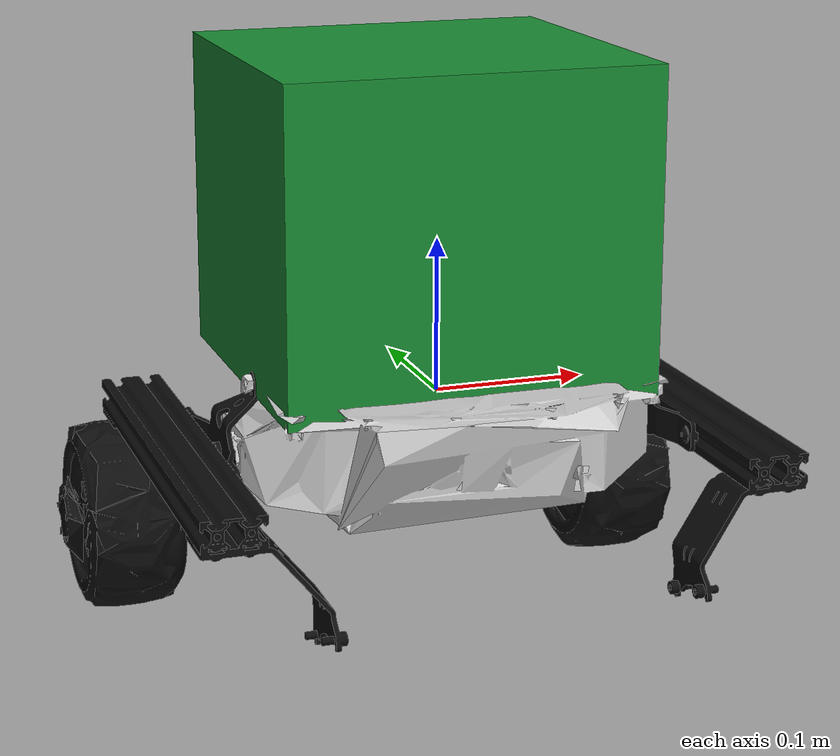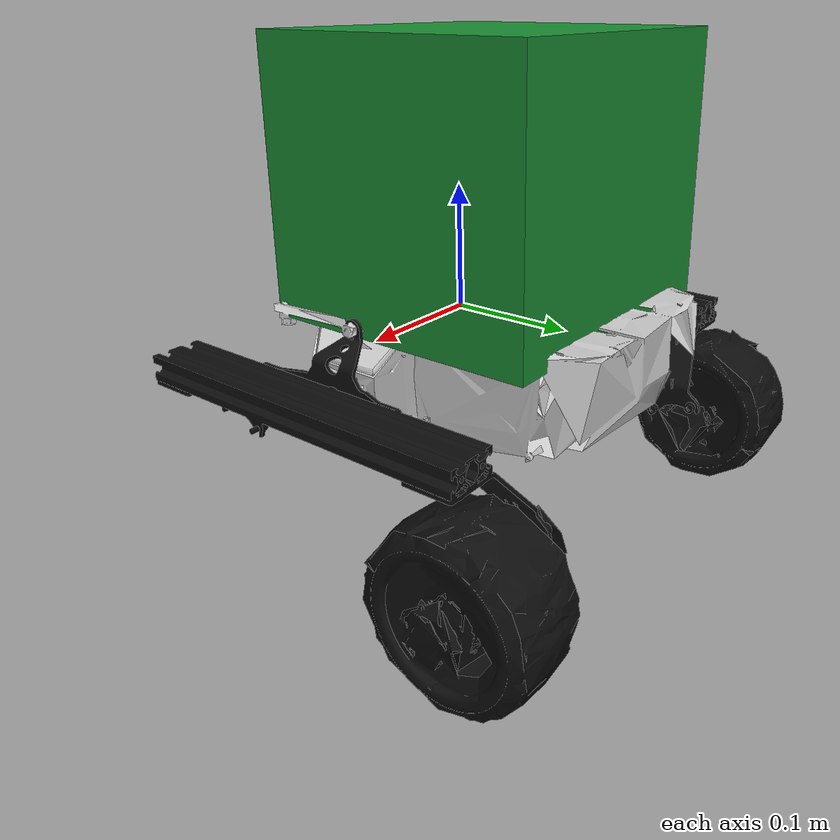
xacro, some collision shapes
<?xml version="1.0"?>
<robot xmlns:xacro="http://www.ros.org/wiki/xacro" name="leo_model1_cad_flir_spad">

  <xacro:include filename="$(find leo_description_cad)/urdf/leo_model1_cad.urdf.xacro"/>

  <!-- Copy of the shared sensor_mounts.xacro into this package, so
       leo_description_cad doesn't need a build/runtime dependency
       on the leo_description package just for this macro. -->
  <xacro:include filename="$(find leo_description_cad)/urdf/sensor_mounts.xacro"/>

  <xacro:flir_spad_mount link_prefix="" flir_spad_z="0.29012"/>

</robot>

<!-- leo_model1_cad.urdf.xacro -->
<robot xmlns:xacro="http://www.ros.org/wiki/xacro" name="leo_model1_cad">

  <material name="chassis_light_gray">
    <!-- Approximate match for Leo Rover's chassis color — no exact
         swatch reference was available; adjust if you have one. -->
    <color rgba="0.80 0.80 0.80 1.0"/>
  </material>
  <material name="running_gear_black">
    <color rgba="0.05 0.05 0.05 1.0"/>
  </material>
  <material name="camera_green">
    <color rgba="0.10 0.55 0.20 1.0"/>
  </material>

  <!-- ============ base_link (root) ============ -->
  <link name="base_link">
    <visual>
      <!-- No compensating origin: base_link IS the robot's own frame
           origin (pivot_global = 0,0,0 by definition), so the mesh
           is trusted as-is. -->
      <geometry>
        <mesh filename="package://leo_description_cad/meshes/cad/leo1_model_base_link.stl" scale="0.001 0.001 0.001"/>
      </geometry>
      <material name="chassis_light_gray"/>
    </visual>
    <collision>
      <origin xyz="0.011280 0.015301 -0.011655" rpy="0 0 0"/>
      <geometry>
        <box size="0.3110 0.2831 0.0981"/>
      </geometry>
    </collision>
    <inertial>
      <origin xyz="0.011280 0.015301 -0.011655" rpy="0 0 0"/>
      <mass value="1.987750"/>
      <inertia ixx="0.015760000" ixy="-0.001661000" ixz="0.000289200"
               iyy="0.011790000" iyz="0.001192000" izz="0.024350000"/>
    </inertial>
  </link>

  <!-- ============ rocker_L_link ============ -->
  <joint name="rocker_L_joint" type="fixed">
    <parent link="base_link"/>
    <child link="rocker_L_link"/>
    <origin xyz="0.130187 -0.001011 0.016361" rpy="0 0 0"/>
  </joint>
  <link name="rocker_L_link">
    <visual>
      <origin xyz="-0.130187 0.001011 -0.016361" rpy="0 0 0"/>
      <geometry>
        <mesh filename="package://leo_description_cad/meshes/cad/leo1_model_rocker_L_link.stl" scale="0.001 0.001 0.001"/>
      </geometry>
      <material name="running_gear_black"/>
    </visual>
    <collision>
      <origin xyz="-0.292827 0.000001 -0.048915" rpy="0 0 0"/>
      <geometry>
        <box size="0.3339 0.0812 0.1341"/>
      </geometry>
    </collision>
    <inertial>
      <origin xyz="-0.292827 0.000001 -0.048915" rpy="0 0 0"/>
      <mass value="0.351114"/>
      <inertia ixx="0.003541000" ixy="-0.000057698" ixz="-0.001796000"
               iyy="0.009903000" iyz="-0.000011971" izz="0.012410000"/>
    </inertial>
  </link>

  <!-- ============ rocker_R_link (see flag #2: inertia looks off vs rocker_L) ============ -->
  <joint name="rocker_R_joint" type="fixed">
    <parent link="base_link"/>
    <child link="rocker_R_link"/>
    <origin xyz="-0.123187 -0.001017 0.016361" rpy="0 0 0"/>
  </joint>
  <link name="rocker_R_link">
    <visual>
      <origin xyz="0.123187 0.001017 -0.016361" rpy="0 0 0"/>
      <geometry>
        <mesh filename="package://leo_description_cad/meshes/cad/leo1_model_rocker_R_link.stl" scale="0.001 0.001 0.001"/>
      </geometry>
      <material name="running_gear_black"/>
    </visual>
    <collision>
      <origin xyz="0.285827 0.000006 -0.048915" rpy="0 0 0"/>
      <geometry>
        <box size="0.3339 0.0812 0.1341"/>
      </geometry>
    </collision>
    <inertial>
      <origin xyz="0.285827 0.000006 -0.048915" rpy="0 0 0"/>
      <mass value="0.351114"/>
      <inertia ixx="0.003078000" ixy="-0.000000001" ixz="-0.000063100"
               iyy="0.000243300" iyz="-0.000000007" izz="0.003120000"/>
    </inertial>
  </link>

  <!-- ============ wheel_FL_link ============ -->
  <joint name="wheel_FL_joint" type="continuous">
    <parent link="rocker_L_link"/>
    <child link="wheel_FL_link"/>
    <origin xyz="0.093819 -0.147764 -0.131244" rpy="0 0 0"/>
    <axis xyz="1 0 0"/>
  </joint>
  <link name="wheel_FL_link">
    <visual>
      <origin xyz="-0.224006 0.148775 0.114883" rpy="0 0 0"/>
      <geometry>
        <mesh filename="package://leo_description_cad/meshes/cad/leo1_model_wheel_FL_link.stl" scale="0.001 0.001 0.001"/>
      </geometry>
      <material name="running_gear_black"/>
    </visual>
    <collision>
      <origin xyz="-0.065122 0.000168 0.000549" rpy="0 0 0"/>
      <geometry>
        <box size="0.1300 0.1343 0.1300"/>
      </geometry>
    </collision>
    <inertial>
      <origin xyz="-0.065122 0.000168 0.000549" rpy="0 0 0"/>
      <mass value="1.708924"/>
      <inertia ixx="0.001394000" ixy="0.000008954" ixz="0.000028970"
               iyy="0.002361000" iyz="0.000012759" izz="0.002397000"/>
    </inertial>
  </link>

  <!-- ============ wheel_RL_link ============ -->
  <joint name="wheel_RL_joint" type="continuous">
    <parent link="rocker_L_link"/>
    <child link="wheel_RL_link"/>
    <origin xyz="0.093819 0.147764 -0.131243" rpy="0 0 0"/>
    <axis xyz="1 0 0"/>
  </joint>
  <link name="wheel_RL_link">
    <visual>
      <origin xyz="-0.224006 -0.146753 0.114882" rpy="0 0 0"/>
      <geometry>
        <mesh filename="package://leo_description_cad/meshes/cad/leo1_model_wheel_RL_link.stl" scale="0.001 0.001 0.001"/>
      </geometry>
      <material name="running_gear_black"/>
    </visual>
    <collision>
      <origin xyz="-0.065122 -0.000177 0.000546" rpy="0 0 0"/>
      <geometry>
        <box size="0.1300 0.1343 0.1300"/>
      </geometry>
    </collision>
    <inertial>
      <origin xyz="-0.065122 -0.000177 0.000546" rpy="0 0 0"/>
      <mass value="1.708924"/>
      <inertia ixx="0.001394000" ixy="-0.000009282" ixz="0.000028867"
               iyy="0.002361000" iyz="-0.000012712" izz="0.002397000"/>
    </inertial>
  </link>

  <!-- ============ wheel_FR_link (mirrored/derived — see flag #4) ============ -->
  <joint name="wheel_FR_joint" type="continuous">
    <parent link="rocker_R_link"/>
    <child link="wheel_FR_link"/>
    <origin xyz="-0.093819 -0.147764 -0.131244" rpy="0 0 0"/>
    <axis xyz="1 0 0"/>
  </joint>
  <link name="wheel_FR_link">
    <visual>
      <origin xyz="0.217006 0.148781 0.114883" rpy="0 0 0"/>
      <geometry>
        <mesh filename="package://leo_description_cad/meshes/cad/leo1_model_wheel_FL_link.stl" scale="-0.001 0.001 0.001"/>
      </geometry>
      <material name="running_gear_black"/>
    </visual>
    <collision>
      <origin xyz="0.065122 0.000168 0.000549" rpy="0 0 0"/>
      <geometry>
        <box size="0.1300 0.1343 0.1300"/>
      </geometry>
    </collision>
    <inertial>
      <origin xyz="0.065122 0.000168 0.000549" rpy="0 0 0"/>
      <mass value="1.708924"/>
      <inertia ixx="0.001394000" ixy="-0.000008954" ixz="-0.000028970"
               iyy="0.002361000" iyz="0.000012759" izz="0.002397000"/>
    </inertial>
  </link>

  <!-- ============ wheel_RR_link (mirrored/derived — see flag #4) ============ -->
  <joint name="wheel_RR_joint" type="continuous">
    <parent link="rocker_R_link"/>
    <child link="wheel_RR_link"/>
    <origin xyz="-0.093819 0.147764 -0.131243" rpy="0 0 0"/>
    <axis xyz="1 0 0"/>
  </joint>
  <link name="wheel_RR_link">
    <visual>
      <!-- v3: true mirror via negative X scale — see wheel_FR_link's
           comment above for the full explanation. -->
      <origin xyz="0.217006 -0.146747 0.114882" rpy="0 0 0"/>
      <geometry>
        <mesh filename="package://leo_description_cad/meshes/cad/leo1_model_wheel_RL_link.stl" scale="-0.001 0.001 0.001"/>
      </geometry>
      <material name="running_gear_black"/>
    </visual>
    <collision>
      <origin xyz="0.065122 -0.000177 0.000546" rpy="0 0 0"/>
      <geometry>
        <box size="0.1300 0.1343 0.1300"/>
      </geometry>
    </collision>
    <inertial>
      <origin xyz="0.065122 -0.000177 0.000546" rpy="0 0 0"/>
      <mass value="1.708924"/>
      <inertia ixx="0.001394000" ixy="0.000009282" ixz="-0.000028867"
               iyy="0.002361000" iyz="-0.000012712" izz="0.002397000"/>
    </inertial>
  </link>

  <!-- ============ camera_frame (fixed mount, see flags 3 & 6) ============ -->
  <joint name="camera_frame_joint" type="fixed">
    <parent link="base_link"/>
    <child link="camera_frame"/>
    <origin xyz="-0.001737 0.030583 0.113168" rpy="0 0 0"/>
  </joint>
  <link name="camera_frame">
    <visual>
      <origin xyz="0.001737 -0.030583 -0.113168" rpy="0 0 0"/>
      <geometry>
        <mesh filename="package://leo_description_cad/meshes/cad/leo1_model_camera_frame.stl" scale="0.001 0.001 0.001"/>
      </geometry>
      <material name="camera_green"/>
    </visual>
    <collision>
      <origin xyz="0.000000 0.000000 0.000000" rpy="0 0 0"/>
      <geometry>
        <box size="0.2410 0.2260 0.2094"/>
      </geometry>
    </collision>
    <inertial>
      <origin xyz="0.000000 0.000000 0.000000" rpy="0 0 0"/>
      <mass value="4.162364"/>
      <inertia ixx="0.024070000" ixy="-0.001500000" ixz="0.001974000"
               iyy="0.030050000" iyz="0.006021000" izz="0.094600000"/>
    </inertial>
  </link>

  <!-- No antenna_link: this CAD model (leo1_model) does not include an antenna component. -->

</robot>

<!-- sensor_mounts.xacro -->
<robot xmlns:xacro="http://www.ros.org/wiki/xacro">

  <xacro:macro name="flir_spad_mount" params="link_prefix:='' flir_spad_z:=0.27217">

    <xacro:property name="flir_spad_pitch" value="0.349066"/>  <!-- 20 deg -->

    <!-- ESTIMATE: mast set back from center, cameras centered/mirrored laterally -->
    <xacro:property name="mount_x" value="-0.05"/>
    <xacro:property name="cam_lateral_offset" value="0.03"/>

    <link name="${link_prefix}flir_frame">
      <inertial>
        <mass value="0.05"/>
        <inertia ixx="1e-5" ixy="0" ixz="0" iyy="1e-5" iyz="0" izz="1e-5"/>
      </inertial>
    </link>
    <link name="${link_prefix}flir_optical_frame"/>
    <link name="${link_prefix}spad_frame">
      <inertial>
        <mass value="0.05"/>
        <inertia ixx="1e-5" ixy="0" ixz="0" iyy="1e-5" iyz="0" izz="1e-5"/>
      </inertial>
    </link>
    <link name="${link_prefix}spad_optical_frame"/>

    <joint name="${link_prefix}flir_joint" type="fixed">
      <origin xyz="${mount_x} ${cam_lateral_offset} ${flir_spad_z}" rpy="0 ${flir_spad_pitch} 0"/>
      <parent link="${link_prefix}base_link"/>
      <child link="${link_prefix}flir_frame"/>
    </joint>

    <gazebo reference="${link_prefix}flir_joint">
      <disableFixedJointLumping>true</disableFixedJointLumping>
    </gazebo>

    <joint name="${link_prefix}flir_optical_joint" type="fixed">
      <origin xyz="0 0 0" rpy="${-pi/2} 0.0 ${-pi/2}"/>
      <parent link="${link_prefix}flir_frame"/>
      <child link="${link_prefix}flir_optical_frame"/>
    </joint>

    <joint name="${link_prefix}spad_joint" type="fixed">
      <origin xyz="${mount_x} ${-cam_lateral_offset} ${flir_spad_z}" rpy="0 ${flir_spad_pitch} 0"/>
      <parent link="${link_prefix}base_link"/>
      <child link="${link_prefix}spad_frame"/>
    </joint>

    <gazebo reference="${link_prefix}spad_joint">
      <disableFixedJointLumping>true</disableFixedJointLumping>
    </gazebo>

    <joint name="${link_prefix}spad_optical_joint" type="fixed">
      <origin xyz="0 0 0" rpy="${-pi/2} 0.0 ${-pi/2}"/>
      <parent link="${link_prefix}spad_frame"/>
      <child link="${link_prefix}spad_optical_frame"/>
    </joint>

    <gazebo reference="${link_prefix}flir_frame">
      <sensor name="flir_camera" type="camera">
        <camera name="flir">
          <horizontal_fov>0.37700</horizontal_fov>  <!-- 21.6 deg -->
          <image>
            <width>720</width>
            <height>540</height>
            <format>L8</format>  <!-- monochrome, per paper -->
          </image>
          <clip>
            <near>0.05</near>
            <far>300</far>
          </clip>
        </camera>
        <always_on>1</always_on>
        <update_rate>30</update_rate>
        <visualize>true</visualize>
        <topic>${link_prefix}flir/image_raw</topic>
        <gz_frame_id>${link_prefix}flir_optical_frame</gz_frame_id>
      </sensor>
    </gazebo>

    <gazebo reference="${link_prefix}spad_frame">
      <sensor name="spad_camera" type="camera">
        <camera name="spad">
          <horizontal_fov>0.61959</horizontal_fov>  <!-- 35.5 deg -->
          <image>
            <width>512</width>
            <height>512</height>
            <format>L8</format>
          </image>
          <clip>
            <near>0.05</near>
            <far>300</far>
          </clip>
        </camera>
        <always_on>1</always_on>
        <update_rate>30</update_rate>
        <visualize>true</visualize>
        <topic>${link_prefix}spad/image_raw</topic>
        <gz_frame_id>${link_prefix}spad_optical_frame</gz_frame_id>
      </sensor>
    </gazebo>

  </xacro:macro>

  <xacro:macro name="zed2_mount" params="link_prefix:=''">

    <!-- Height above base_link = 0.550 (ground) - 0.19783 (base_link height) = 0.35217 -->
    <xacro:property name="zed2_z" value="0.35217"/>
    <xacro:property name="zed2_pitch" value="0.436332"/>  <!-- 25 deg -->
    <xacro:property name="zed2_mount_x" value="-0.05"/>   <!-- ESTIMATE -->
    <xacro:property name="zed2_half_baseline" value="0.060"/>  <!-- 120mm baseline, exact from Table II -->

    <link name="${link_prefix}zed2_frame">
      <inertial>
        <mass value="0.05"/>
        <inertia ixx="1e-5" ixy="0" ixz="0" iyy="1e-5" iyz="0" izz="1e-5"/>
      </inertial>
    </link>
    <link name="${link_prefix}zed2_left_frame">
      <inertial>
        <mass value="0.05"/>
        <inertia ixx="1e-5" ixy="0" ixz="0" iyy="1e-5" iyz="0" izz="1e-5"/>
      </inertial>
    </link>
    <link name="${link_prefix}zed2_left_optical_frame"/>
    <link name="${link_prefix}zed2_right_frame">
      <inertial>
        <mass value="0.05"/>
        <inertia ixx="1e-5" ixy="0" ixz="0" iyy="1e-5" iyz="0" izz="1e-5"/>
      </inertial>
    </link>
    <link name="${link_prefix}zed2_right_optical_frame"/>

    <!-- Central mount frame -->
    <joint name="${link_prefix}zed2_joint" type="fixed">
      <origin xyz="${zed2_mount_x} 0 ${zed2_z}" rpy="0 ${zed2_pitch} 0"/>
      <parent link="${link_prefix}base_link"/>
      <child link="${link_prefix}zed2_frame"/>
    </joint>

    <gazebo reference="${link_prefix}zed2_joint">
      <disableFixedJointLumping>true</disableFixedJointLumping>
    </gazebo>

    <!-- Left eye -->
    <joint name="${link_prefix}zed2_left_joint" type="fixed">
      <origin xyz="0 ${zed2_half_baseline} 0" rpy="0 0 0"/>
      <parent link="${link_prefix}zed2_frame"/>
      <child link="${link_prefix}zed2_left_frame"/>
    </joint>

    <gazebo reference="${link_prefix}zed2_left_joint">
      <disableFixedJointLumping>true</disableFixedJointLumping>
    </gazebo>

    <joint name="${link_prefix}zed2_left_optical_joint" type="fixed">
      <origin xyz="0 0 0" rpy="${-pi/2} 0.0 ${-pi/2}"/>
      <parent link="${link_prefix}zed2_left_frame"/>
      <child link="${link_prefix}zed2_left_optical_frame"/>
    </joint>

    <!-- Right eye -->
    <joint name="${link_prefix}zed2_right_joint" type="fixed">
      <origin xyz="0 ${-zed2_half_baseline} 0" rpy="0 0 0"/>
      <parent link="${link_prefix}zed2_frame"/>
      <child link="${link_prefix}zed2_right_frame"/>
    </joint>

    <gazebo reference="${link_prefix}zed2_right_joint">
      <disableFixedJointLumping>true</disableFixedJointLumping>
    </gazebo>

    <joint name="${link_prefix}zed2_right_optical_joint" type="fixed">
      <origin xyz="0 0 0" rpy="${-pi/2} 0.0 ${-pi/2}"/>
      <parent link="${link_prefix}zed2_right_frame"/>
      <child link="${link_prefix}zed2_right_optical_frame"/>
    </joint>

    <!-- ZED2 — Table II: 640x360 per eye, 100°x70° FoV, 8-bit RGB
         NOTE: no distortion coefficients from paper Table II — omitted, not zero. -->
    <gazebo reference="${link_prefix}zed2_right_frame">
      <sensor name="zed2_right_camera" type="camera">
        <camera name="zed2_right">
          <horizontal_fov>1.74533</horizontal_fov>  <!-- 100 deg -->
          <image>
            <width>640</width>
            <height>360</height>
            <format>R8G8B8</format>
          </image>
          <clip>
            <near>0.05</near>
            <far>300</far>
          </clip>
        </camera>
        <always_on>1</always_on>
        <update_rate>30</update_rate>
        <visualize>true</visualize>
        <topic>${link_prefix}zed2/right/image_raw</topic>
        <gz_frame_id>${link_prefix}zed2_right_optical_frame</gz_frame_id>
      </sensor>
    </gazebo>

    <gazebo reference="${link_prefix}zed2_left_frame">
      <sensor name="zed2_left_camera" type="camera">
        <camera name="zed2_left">
          <horizontal_fov>1.74533</horizontal_fov>  <!-- 100 deg -->
          <image>
            <width>640</width>
            <height>360</height>
            <format>R8G8B8</format>
          </image>
          <clip>
            <near>0.05</near>
            <far>300</far>
          </clip>
        </camera>
        <always_on>1</always_on>
        <update_rate>30</update_rate>
        <visualize>true</visualize>
        <topic>${link_prefix}zed2/left/image_raw</topic>
        <gz_frame_id>${link_prefix}zed2_left_optical_frame</gz_frame_id>
      </sensor>
    </gazebo>

  </xacro:macro>

</robot>
